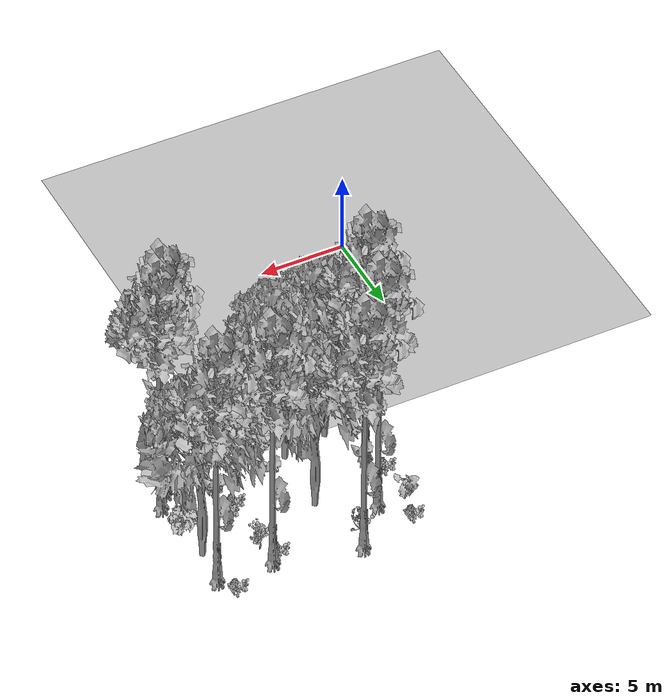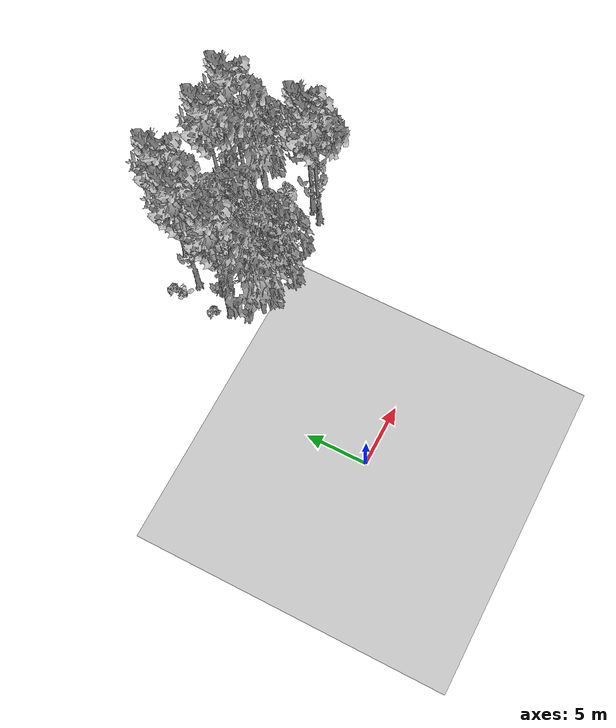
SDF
<sdf version="1.7">
 <world name="default">
  <model name="ground_plane">
   <static>1</static>
   <link name="link">
    <collision name="collision">
     <pose>-50 0 0 0 -0 0</pose>
     <geometry><plane><normal>0 0 1</normal><size>80 80</size></plane></geometry>
     <surface><contact><ode><min_depth>0.01</min_depth><max_vel>0</max_vel></ode></contact></surface>
    </collision>
    <visual name="grass">
     <cast_shadows>0</cast_shadows>
     <geometry>
      <mesh>
       <scale>0.46714285714285714 0.46714285714285714 0.1</scale>
       <uri>file://grass_plane/meshes/grass_plane.dae</uri>
      </mesh>
     </geometry>
    </visual>
   </link>
  </model>
  <model name="Tree 80">
   <static>1</static>
   <pose>7.409377162628822 18.836020023326263 0 1.57079 -0 0</pose>
   <link name="link">
    <collision name="collision">
     <geometry><mesh><scale>3.5 5 3.5</scale><uri>model://tree_9/meshes/tree_9.obj</uri></mesh></geometry>
    </collision>
    <visual name="visual">
     <geometry><mesh><scale>3.5 5 3.5</scale><uri>model://tree_9/meshes/tree_9.obj</uri></mesh></geometry>
    </visual>
   </link>
  </model>
  <model name="Tree 210">
   <static>1</static>
   <pose>17.2488846280063 18.069309909096376 0 1.57079 -0 0</pose>
   <link name="link">
    <collision name="collision">
     <geometry><mesh><scale>3.5 5 3.5</scale><uri>model://tree_2/meshes/tree_2.obj</uri></mesh></geometry>
    </collision>
    <visual name="visual">
     <geometry><mesh><scale>3.5 5 3.5</scale><uri>model://tree_2/meshes/tree_2.obj</uri></mesh></geometry>
    </visual>
   </link>
  </model>
  <model name="Tree 236">
   <static>1</static>
   <pose>17.703302518218692 13.83248519904187 0 1.57079 -0 0</pose>
   <link name="link">
    <collision name="collision">
     <geometry><mesh><scale>3.5 5 3.5</scale><uri>model://tree_9/meshes/tree_9.obj</uri></mesh></geometry>
    </collision>
    <visual name="visual">
     <geometry><mesh><scale>3.5 5 3.5</scale><uri>model://tree_9/meshes/tree_9.obj</uri></mesh></geometry>
    </visual>
   </link>
  </model>
  <model name="Tree 246">
   <static>1</static>
   <pose>9.490957162603422 21.278148282741952 0 1.57079 -0 0</pose>
   <link name="link">
    <collision name="collision">
     <geometry><mesh><scale>3.5 5 3.5</scale><uri>model://tree_9/meshes/tree_9.obj</uri></mesh></geometry>
    </collision>
    <visual name="visual">
     <geometry><mesh><scale>3.5 5 3.5</scale><uri>model://tree_9/meshes/tree_9.obj</uri></mesh></geometry>
    </visual>
   </link>
  </model>
  <model name="Tree 317">
   <static>1</static>
   <pose>17.05986384038198 12.906455437098444 0 1.57079 -0 0</pose>
   <link name="link">
    <collision name="collision">
     <geometry><mesh><scale>3.5 5 3.5</scale><uri>model://tree_9/meshes/tree_9.obj</uri></mesh></geometry>
    </collision>
    <visual name="visual">
     <geometry><mesh><scale>3.5 5 3.5</scale><uri>model://tree_9/meshes/tree_9.obj</uri></mesh></geometry>
    </visual>
   </link>
  </model>
  <model name="Tree 369">
   <static>1</static>
   <pose>6.37618546877961 15.349098303999014 0 1.57079 -0 0</pose>
   <link name="link">
    <collision name="collision">
     <geometry><mesh><scale>3.5 5 3.5</scale><uri>model://tree_9/meshes/tree_9.obj</uri></mesh></geometry>
    </collision>
    <visual name="visual">
     <geometry><mesh><scale>3.5 5 3.5</scale><uri>model://tree_9/meshes/tree_9.obj</uri></mesh></geometry>
    </visual>
   </link>
  </model>
  <model name="Tree 392">
   <static>1</static>
   <pose>17.422968748195522 20.044879906565612 0 1.57079 -0 0</pose>
   <link name="link">
    <collision name="collision">
     <geometry><mesh><scale>3.5 5 3.5</scale><uri>model://tree_9/meshes/tree_9.obj</uri></mesh></geometry>
    </collision>
    <visual name="visual">
     <geometry><mesh><scale>3.5 5 3.5</scale><uri>model://tree_9/meshes/tree_9.obj</uri></mesh></geometry>
    </visual>
   </link>
  </model>
  <model name="Tree 406">
   <static>1</static>
   <pose>7.509989280652192 12.919723675355996 0 1.57079 -0 0</pose>
   <link name="link">
    <collision name="collision">
     <geometry><mesh><scale>3.5 5 3.5</scale><uri>model://tree_2/meshes/tree_2.obj</uri></mesh></geometry>
    </collision>
    <visual name="visual">
     <geometry><mesh><scale>3.5 5 3.5</scale><uri>model://tree_2/meshes/tree_2.obj</uri></mesh></geometry>
    </visual>
   </link>
  </model>
  <model name="Tree 490">
   <static>1</static>
   <pose>10.319843769774629 17.39450933297615 0 1.57079 -0 0</pose>
   <link name="link">
    <collision name="collision">
     <geometry><mesh><scale>3.5 5 3.5</scale><uri>model://tree_2/meshes/tree_2.obj</uri></mesh></geometry>
    </collision>
    <visual name="visual">
     <geometry><mesh><scale>3.5 5 3.5</scale><uri>model://tree_2/meshes/tree_2.obj</uri></mesh></geometry>
    </visual>
   </link>
  </model>
  <model name="Tree 610">
   <static>1</static>
   <pose>10.161088229911293 13.491889527187048 0 1.57079 -0 0</pose>
   <link name="link">
    <collision name="collision">
     <geometry><mesh><scale>3.5 5 3.5</scale><uri>model://tree_2/meshes/tree_2.obj</uri></mesh></geometry>
    </collision>
    <visual name="visual">
     <geometry><mesh><scale>3.5 5 3.5</scale><uri>model://tree_2/meshes/tree_2.obj</uri></mesh></geometry>
    </visual>
   </link>
  </model>
  <model name="Tree 635">
   <static>1</static>
   <pose>14.237596462477008 20.132131252509033 0 1.57079 -0 0</pose>
   <link name="link">
    <collision name="collision">
     <geometry><mesh><scale>3.5 5 3.5</scale><uri>model://tree_9/meshes/tree_9.obj</uri></mesh></geometry>
    </collision>
    <visual name="visual">
     <geometry><mesh><scale>3.5 5 3.5</scale><uri>model://tree_9/meshes/tree_9.obj</uri></mesh></geometry>
    </visual>
   </link>
  </model>
  <model name="Bush 41">
   <static>1</static>
   <pose>14.505846231112564 19.12727519434935 0 1.57079 -0 0</pose>
   <link name="link">
    <collision name="collision">
     <geometry><mesh><scale>2 2 2</scale><uri>model://bush_5/meshes/bush_5.obj</uri></mesh></geometry>
     <surface><contact><collide_without_contact>false</collide_without_contact></contact></surface>
    </collision>
    <visual name="visual">
     <geometry><mesh><scale>2 2 2</scale><uri>model://bush_5/meshes/bush_5.obj</uri></mesh></geometry>
    </visual>
   </link>
  </model>
  <model name="Bush 51">
   <static>1</static>
   <pose>14.710808024989 15.91375944231799 0 1.57079 -0 0</pose>
   <link name="link">
    <collision name="collision">
     <geometry><mesh><scale>2 2 2</scale><uri>model://bush_2/meshes/bush_2.obj</uri></mesh></geometry>
     <surface><contact><collide_without_contact>false</collide_without_contact></contact></surface>
    </collision>
    <visual name="visual">
     <geometry><mesh><scale>2 2 2</scale><uri>model://bush_2/meshes/bush_2.obj</uri></mesh></geometry>
    </visual>
   </link>
  </model>
  <model name="Bush 161">
   <static>1</static>
   <pose>14.108168543503922 15.360572256725249 0 1.57079 -0 0</pose>
   <link name="link">
    <collision name="collision">
     <geometry><mesh><scale>2 2 2</scale><uri>model://bush_2/meshes/bush_2.obj</uri></mesh></geometry>
     <surface><contact><collide_without_contact>false</collide_without_contact></contact></surface>
    </collision>
    <visual name="visual">
     <geometry><mesh><scale>2 2 2</scale><uri>model://bush_2/meshes/bush_2.obj</uri></mesh></geometry>
    </visual>
   </link>
  </model>
  <model name="Bush 189">
   <static>1</static>
   <pose>13.608613071062656 19.669672007120738 0 1.57079 -0 0</pose>
   <link name="link">
    <collision name="collision">
     <geometry><mesh><scale>2 2 2</scale><uri>model://bush_2/meshes/bush_2.obj</uri></mesh></geometry>
     <surface><contact><collide_without_contact>false</collide_without_contact></contact></surface>
    </collision>
    <visual name="visual">
     <geometry><mesh><scale>2 2 2</scale><uri>model://bush_2/meshes/bush_2.obj</uri></mesh></geometry>
    </visual>
   </link>
  </model>
  <model name="Bush 195">
   <static>1</static>
   <pose>5.989980065523923 19.213235189212135 0 1.57079 -0 0</pose>
   <link name="link">
    <collision name="collision">
     <geometry><mesh><scale>2 2 2</scale><uri>model://bush_0/meshes/bush_0.obj</uri></mesh></geometry>
     <surface><contact><collide_without_contact>false</collide_without_contact></contact></surface>
    </collision>
    <visual name="visual">
     <geometry><mesh><scale>2 2 2</scale><uri>model://bush_0/meshes/bush_0.obj</uri></mesh></geometry>
    </visual>
   </link>
  </model>
  <model name="Bush 276">
   <static>1</static>
   <pose>14.670909808104554 13.91800914015225 0 1.57079 -0 0</pose>
   <link name="link">
    <collision name="collision">
     <geometry><mesh><scale>2 2 2</scale><uri>model://bush_2/meshes/bush_2.obj</uri></mesh></geometry>
     <surface><contact><collide_without_contact>false</collide_without_contact></contact></surface>
    </collision>
    <visual name="visual">
     <geometry><mesh><scale>2 2 2</scale><uri>model://bush_2/meshes/bush_2.obj</uri></mesh></geometry>
    </visual>
   </link>
  </model>
  <model name="Bush 337">
   <static>1</static>
   <pose>16.711036721649258 21.093774336540903 0 1.57079 -0 0</pose>
   <link name="link">
    <collision name="collision">
     <geometry><mesh><scale>2 2 2</scale><uri>model://bush_2/meshes/bush_2.obj</uri></mesh></geometry>
     <surface><contact><collide_without_contact>false</collide_without_contact></contact></surface>
    </collision>
    <visual name="visual">
     <geometry><mesh><scale>2 2 2</scale><uri>model://bush_2/meshes/bush_2.obj</uri></mesh></geometry>
    </visual>
   </link>
  </model>
  <model name="Bush 366">
   <static>1</static>
   <pose>9.08037138834306 20.143475669757784 0 1.57079 -0 0</pose>
   <link name="link">
    <collision name="collision">
     <geometry><mesh><scale>2 2 2</scale><uri>model://bush_4/meshes/bush_4.obj</uri></mesh></geometry>
     <surface><contact><collide_without_contact>false</collide_without_contact></contact></surface>
    </collision>
    <visual name="visual">
     <geometry><mesh><scale>2 2 2</scale><uri>model://bush_4/meshes/bush_4.obj</uri></mesh></geometry>
    </visual>
   </link>
  </model>
  <model name="Bush 375">
   <static>1</static>
   <pose>5.727307797882631 16.523074643611963 0 1.57079 -0 0</pose>
   <link name="link">
    <collision name="collision">
     <geometry><mesh><scale>2 2 2</scale><uri>model://bush_2/meshes/bush_2.obj</uri></mesh></geometry>
     <surface><contact><collide_without_contact>false</collide_without_contact></contact></surface>
    </collision>
    <visual name="visual">
     <geometry><mesh><scale>2 2 2</scale><uri>model://bush_2/meshes/bush_2.obj</uri></mesh></geometry>
    </visual>
   </link>
  </model>
  <model name="Bush 459">
   <static>1</static>
   <pose>17.52742902880218 16.018372186764864 0 1.57079 -0 0</pose>
   <link name="link">
    <collision name="collision">
     <geometry><mesh><scale>2 2 2</scale><uri>model://bush_1/meshes/bush_1.obj</uri></mesh></geometry>
     <surface><contact><collide_without_contact>false</collide_without_contact></contact></surface>
    </collision>
    <visual name="visual">
     <geometry><mesh><scale>2 2 2</scale><uri>model://bush_1/meshes/bush_1.obj</uri></mesh></geometry>
    </visual>
   </link>
  </model>
  <model name="Bush 523">
   <static>1</static>
   <pose>13.116308893799008 12.707309233181064 0 1.57079 -0 0</pose>
   <link name="link">
    <collision name="collision">
     <geometry><mesh><scale>2 2 2</scale><uri>model://bush_2/meshes/bush_2.obj</uri></mesh></geometry>
     <surface><contact><collide_without_contact>false</collide_without_contact></contact></surface>
    </collision>
    <visual name="visual">
     <geometry><mesh><scale>2 2 2</scale><uri>model://bush_2/meshes/bush_2.obj</uri></mesh></geometry>
    </visual>
   </link>
  </model>
  <model name="Bush 560">
   <static>1</static>
   <pose>6.021739978897955 20.366554108658065 0 1.57079 -0 0</pose>
   <link name="link">
    <collision name="collision">
     <geometry><mesh><scale>2 2 2</scale><uri>model://bush_2/meshes/bush_2.obj</uri></mesh></geometry>
     <surface><contact><collide_without_contact>false</collide_without_contact></contact></surface>
    </collision>
    <visual name="visual">
     <geometry><mesh><scale>2 2 2</scale><uri>model://bush_2/meshes/bush_2.obj</uri></mesh></geometry>
    </visual>
   </link>
  </model>
 </world>
</sdf>
